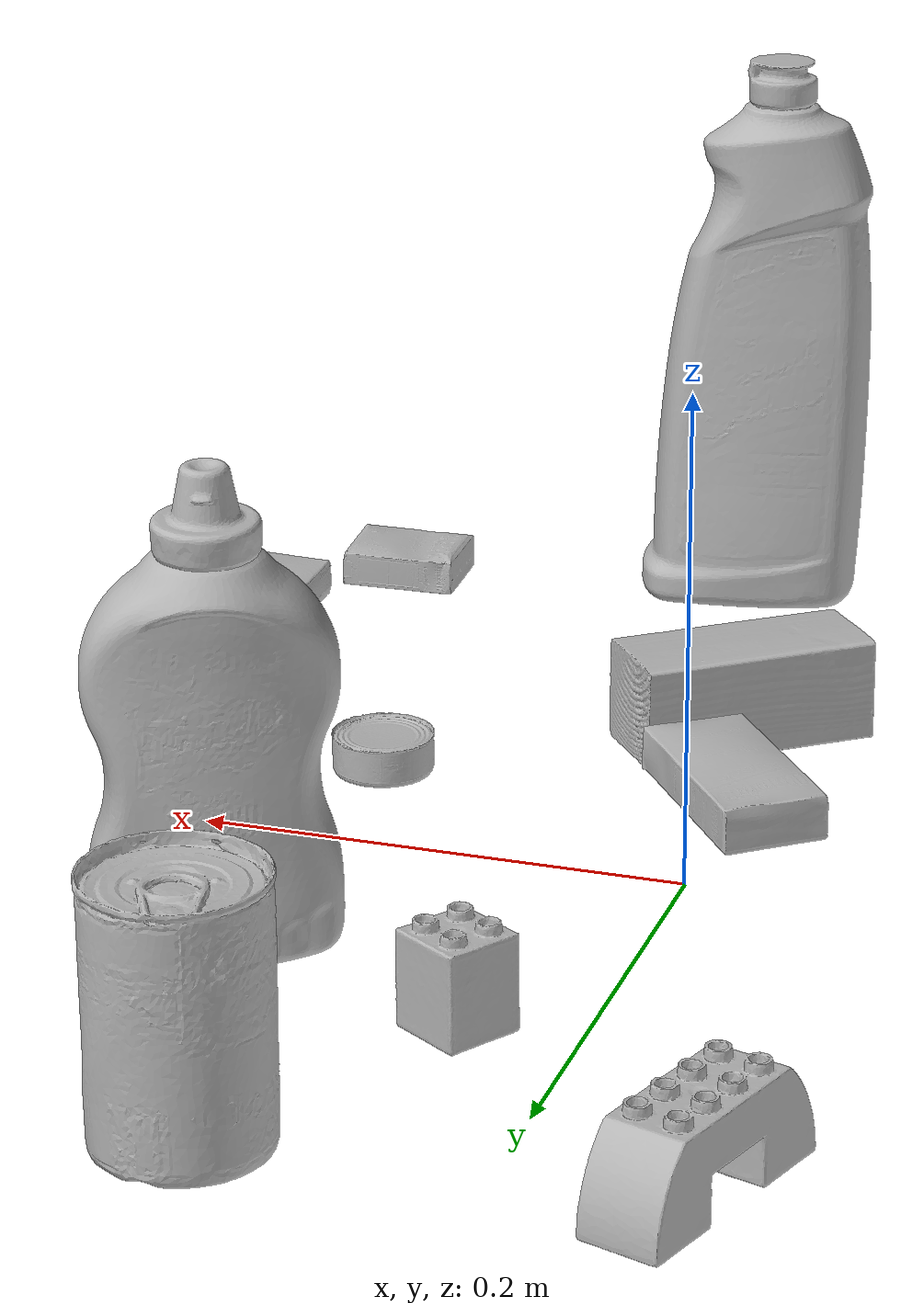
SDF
<sdf version="1.4">
  <world name="default">
    <light name="light1" type="point">
      <pose>0 0 1 0 0 0</pose>
      <diffuse>3 3 3 1</diffuse>
      <specular>3 3 3 1</specular>
    </light>
    <light name="light2" type="point">
      <pose>0 0.5 2 0 0 0</pose>
      <diffuse>1 1 1 1</diffuse>
      <specular>1 1 1 1</specular>
    </light>
    <light name="light3" type="point">
      <pose>0 0.5 2 0 0 0</pose>
      <diffuse>3 3 3 1</diffuse>
      <specular>3 3 3 1</specular>
    </light>
    <scene>
      <ambient>0.7 0.7 0.7</ambient>
    </scene>
    <model name="bottle1">
      <link name="link_bottle1">
        <collision name="default">
          <geometry>
            <mesh>
              <uri>model://bleach_cleanser/collision_meshes/collision.obj</uri>
              <scale>1.0 1.0 1.0</scale>
            </mesh>
          </geometry>
          <surface>
            <friction>
              <ode>
                <mu>0.5</mu>
                <mu2>0.5</mu2>
              </ode>
            </friction>
          <contact>
        <ode>
            <max_vel>0</max_vel>
            <min_depth>0.0001</min_depth>
            <kp>1e8</kp>
        </ode>
    </contact></surface>
        </collision>
        <visual name="default">
          <geometry>
            <mesh>
              <uri>model://bleach_cleanser/visual_meshes/visual.dae</uri>
              <scale>1.0 1.0 1.0</scale>
            </mesh>
          </geometry>
        </visual>
        <inertial>
          <mass>0.7954697608947754</mass>
          <pose>0.00012193184375064448 0.0037838825955986977 -0.02442161552608013 -0.0738167061583634 0.000420116841178447 -0.006875049257496471</pose>
          <inertia>
            <ixx>0.003871667</ixx>
            <iyy>0.0036078263</iyy>
            <izz>0.00066195446</izz>
            <ixy>0</ixy>
            <ixz>0</ixz>
            <iyz>0</iyz>
          </inertia>
        </inertial>
      </link>
      <pose>0.057611994445323944 -0.3278232216835022 0.12578414380550385 -0.00019984801691582776 1.6631648875017266e-05 1.748829966991964</pose>
    </model>
    <model name="bottle2">
      <link name="link_bottle2">
        <collision name="default">
          <geometry>
            <mesh>
              <uri>model://mustard_bottle/collision_meshes/collision.obj</uri>
              <scale>1.0 1.0 1.0</scale>
            </mesh>
          </geometry>
          <surface>
            <friction>
              <ode>
                <mu>0.5</mu>
                <mu2>0.5</mu2>
              </ode>
            </friction>
          <contact>
        <ode>
            <max_vel>0</max_vel>
            <min_depth>0.0001</min_depth>
            <kp>1e8</kp>
        </ode>
    </contact></surface>
        </collision>
        <visual name="default">
          <geometry>
            <mesh>
              <uri>model://mustard_bottle/visual_meshes/visual.dae</uri>
              <scale>1.0 1.0 1.0</scale>
            </mesh>
          </geometry>
        </visual>
        <inertial>
          <mass>0.5118113160133362</mass>
          <pose>0.0005032453336752951 -0.00015647397958673537 -0.017475785687565804 0.0004182313596805905 0.000946575919178121 0.024853765212265823</pose>
          <inertia>
            <ixx>0.00142123</ixx>
            <iyy>0.0012470091</iyy>
            <izz>0.0003745659</izz>
            <ixy>0</ixy>
            <ixz>0</ixz>
            <iyz>0</iyz>
          </inertia>
        </inertial>
      </link>
      <pose>0.15349063277244568 0.1039484515786171 0.09568725526332855 -0.0014970859506683917 0.02596446146514878 1.9528546595686944</pose>
    </model>
    <model name="toy1">
      <link name="link_toy1">
        <collision name="default">
          <geometry>
            <mesh>
              <uri>model://b_lego_duplo/collision_meshes/collision.obj</uri>
              <scale>1.0 1.0 1.0</scale>
            </mesh>
          </geometry>
          <surface>
            <friction>
              <ode>
                <mu>0.5</mu>
                <mu2>0.5</mu2>
              </ode>
            </friction>
          <contact>
        <ode>
            <max_vel>0</max_vel>
            <min_depth>0.0001</min_depth>
            <kp>1e8</kp>
        </ode>
    </contact></surface>
        </collision>
        <visual name="default">
          <geometry>
            <mesh>
              <uri>model://b_lego_duplo/visual_meshes/visual.dae</uri>
              <scale>1.0 1.0 1.0</scale>
            </mesh>
          </geometry>
        </visual>
        <inertial>
          <mass>0.04622781649231911</mass>
          <pose>-0.00011053043272113428 -9.152668098977301e-06 0.0019294294761493802 -0.037494565787594906 -0.026354503997733224 0.45188645636516256</pose>
          <inertia>
            <ixx>9.46087e-06</ixx>
            <iyy>9.524471e-06</iyy>
            <izz>8.429326e-06</izz>
            <ixy>0</ixy>
            <ixz>0</ixz>
            <iyz>0</iyz>
          </inertia>
        </inertial>
      </link>
      <pose>0.04496752843260765 0.1436719298362732 0.021814994513988495 -7.517864287521695e-07 -1.1940369959432415e-06 -2.1445810147789097</pose>
    </model>
    <model name="toy2">
      <link name="link_toy2">
        <collision name="default">
          <geometry>
            <mesh>
              <uri>model://e_lego_duplo/collision_meshes/collision.obj</uri>
              <scale>1.0 1.0 1.0</scale>
            </mesh>
          </geometry>
          <surface>
            <friction>
              <ode>
                <mu>0.5</mu>
                <mu2>0.5</mu2>
              </ode>
            </friction>
          <contact>
        <ode>
            <max_vel>0</max_vel>
            <min_depth>0.0001</min_depth>
            <kp>1e8</kp>
        </ode>
    </contact></surface>
        </collision>
        <visual name="default">
          <geometry>
            <mesh>
              <uri>model://e_lego_duplo/visual_meshes/visual.dae</uri>
              <scale>1.0 1.0 1.0</scale>
            </mesh>
          </geometry>
        </visual>
        <inertial>
          <mass>0.08809097856283188</mass>
          <pose>0.00032560486579313874 0.00023485404381062835 0.0019521467620506883 -0.022567425824888195 -6.82459351116558e-05 -0.007625145117383363</pose>
          <inertia>
            <ixx>1.836988e-05</ixx>
            <iyy>7.539474e-05</iyy>
            <izz>7.34193e-05</izz>
            <ixy>0</ixy>
            <ixz>0</ixz>
            <iyz>0</iyz>
          </inertia>
        </inertial>
      </link>
      <pose>-0.06885133683681488 0.23415564000606537 0.02180900052189827 8.407454530255912e-07 1.7934862672052256e-07 -1.8842783723026175</pose>
    </model>
    <model name="can1">
      <link name="link_can1">
        <collision name="default">
          <geometry>
            <mesh>
              <uri>model://tomato_soup_can/collision_meshes/collision.obj</uri>
              <scale>1.0 1.0 1.0</scale>
            </mesh>
          </geometry>
          <surface>
            <friction>
              <ode>
                <mu>0.5</mu>
                <mu2>0.5</mu2>
              </ode>
            </friction>
          <contact>
        <ode>
            <max_vel>0</max_vel>
            <min_depth>0.0001</min_depth>
            <kp>1e8</kp>
        </ode>
    </contact></surface>
        </collision>
        <visual name="default">
          <geometry>
            <mesh>
              <uri>model://tomato_soup_can/visual_meshes/visual.dae</uri>
              <scale>1.0 1.0 1.0</scale>
            </mesh>
          </geometry>
        </visual>
        <inertial>
          <mass>0.4347945749759674</mass>
          <pose>0.0001265227037947625 0.00010805525380419567 -0.0017973979702219367 0.007020064127759274 0.0004229940757469139 -0.009903323281130803</pose>
          <inertia>
            <ixx>0.00047671542</ixx>
            <iyy>0.00047396024</iyy>
            <izz>0.00024707714</izz>
            <ixy>0</ixy>
            <ixz>0</ixz>
            <iyz>0</iyz>
          </inertia>
        </inertial>
      </link>
      <pose>0.10671467334032059 0.25353482365608215 0.051273997873067856 -6.683045558931655e-07 -7.732510555361791e-07 -3.0875874237182788</pose>
    </model>
    <model name="can2">
      <link name="link_can2">
        <collision name="default">
          <geometry>
            <mesh>
              <uri>model://tuna_fish_can/collision_meshes/collision.obj</uri>
              <scale>0.5 0.5 0.5</scale>
            </mesh>
          </geometry>
          <surface>
            <friction>
              <ode>
                <mu>0.5</mu>
                <mu2>0.5</mu2>
              </ode>
            </friction>
          <contact>
        <ode>
            <max_vel>0</max_vel>
            <min_depth>0.0001</min_depth>
            <kp>1e8</kp>
        </ode>
    </contact></surface>
        </collision>
        <visual name="default">
          <geometry>
            <mesh>
              <uri>model://tuna_fish_can/visual_meshes/visual.dae</uri>
              <scale>0.5 0.5 0.5</scale>
            </mesh>
          </geometry>
        </visual>
        <inertial>
          <mass>0.02951119653880596</mass>
          <pose>-2.0361847418826073e-05 -7.256335720740026e-06 -0.0005269026733003557 -0.0017944763161136105 0.00017161533088142807 0.2405366956082085</pose>
          <inertia>
            <ixx>3.989958e-06</ixx>
            <iyy>3.9733272e-06</iyy>
            <izz>6.827389e-06</izz>
            <ixy>0</ixy>
            <ixz>0</ixz>
            <iyz>0</iyz>
          </inertia>
        </inertial>
      </link>
      <pose>0.14963200688362122 -0.07168737798929214 0.00851999968290329 -5.301413781924613e-09 -1.4402390002778333e-10 -2.0077318920239335</pose>
    </model>
    <model name="box1">
      <link name="link_box1">
        <collision name="default">
          <geometry>
            <mesh>
              <uri>model://sugar_box/collision_meshes/collision.obj</uri>
              <scale>0.5 0.5 0.5</scale>
            </mesh>
          </geometry>
          <surface>
            <friction>
              <ode>
                <mu>0.5</mu>
                <mu2>0.5</mu2>
              </ode>
            </friction>
          <contact>
        <ode>
            <max_vel>0</max_vel>
            <min_depth>0.0001</min_depth>
            <kp>1e8</kp>
        </ode>
    </contact></surface>
        </collision>
        <visual name="default">
          <geometry>
            <mesh>
              <uri>model://sugar_box/visual_meshes/visual.dae</uri>
              <scale>0.5 0.5 0.5</scale>
            </mesh>
          </geometry>
        </visual>
        <inertial>
          <mass>0.10932230949401855</mass>
          <pose>0.0005171863595023751 1.924554817378521e-05 -0.00018182402709499002 -0.00040462630024242077 0.0010506636385781449 0.0026153787888990553</pose>
          <inertia>
            <ixx>2.277176e-05</ixx>
            <iyy>7.3603005e-05</iyy>
            <izz>8.811158e-05</izz>
            <ixy>0</ixy>
            <ixz>0</ixz>
            <iyz>0</iyz>
          </inertia>
        </inertial>
      </link>
      <pose>0.0010598155204206705 -0.07738754898309708 0.011399301700294018 0.0007755651407901122 -0.02343308730563773 -0.9141686746713955</pose>
    </model>
    <model name="box2">
      <link name="link_box2">
        <collision name="default">
          <geometry>
            <mesh>
              <uri>model://pudding_box/collision_meshes/collision.obj</uri>
              <scale>0.5 0.5 0.5</scale>
            </mesh>
          </geometry>
          <surface>
            <friction>
              <ode>
                <mu>0.5</mu>
                <mu2>0.5</mu2>
              </ode>
            </friction>
          <contact>
        <ode>
            <max_vel>0</max_vel>
            <min_depth>0.0001</min_depth>
            <kp>1e8</kp>
        </ode>
    </contact></surface>
        </collision>
        <visual name="default">
          <geometry>
            <mesh>
              <uri>model://pudding_box/visual_meshes/visual.dae</uri>
              <scale>0.5 0.5 0.5</scale>
            </mesh>
          </geometry>
        </visual>
        <inertial>
          <mass>0.061322033405303955</mass>
          <pose>0.00024474109522998333 0.00040339428232982755 -0.0002594413817860186 0.0052131013423229325 -0.006603797777692156 0.020079823300565562</pose>
          <inertia>
            <ixx>1.733035e-05</ixx>
            <iyy>1.1659984e-05</iyy>
            <izz>2.559279e-05</izz>
            <ixy>0</ixy>
            <ixz>0</ixz>
            <iyz>0</iyz>
          </inertia>
        </inertial>
      </link>
      <pose>0.2681184709072113 -0.2341187447309494 0.009862901642918587 0.02234849977680934 -0.011391739101477784 -1.5709316934962478</pose>
    </model>
    <model name="box3">
      <link name="link_box3">
        <collision name="default">
          <geometry>
            <mesh>
              <uri>model://cracker_box/collision_meshes/collision.obj</uri>
              <scale>0.25 0.25 0.25</scale>
            </mesh>
          </geometry>
          <surface>
            <friction>
              <ode>
                <mu>0.5</mu>
                <mu2>0.5</mu2>
              </ode>
            </friction>
          <contact>
        <ode>
            <max_vel>0</max_vel>
            <min_depth>0.0001</min_depth>
            <kp>1e8</kp>
        </ode>
    </contact></surface>
        </collision>
        <visual name="default">
          <geometry>
            <mesh>
              <uri>model://cracker_box/visual_meshes/visual.dae</uri>
              <scale>0.25 0.25 0.25</scale>
            </mesh>
          </geometry>
        </visual>
        <inertial>
          <mass>0.05027599632740021</mass>
          <pose>0.00023660380975343287 6.358561222441494e-05 -0.00042573834070935845 -0.0003162076618733006 -0.011106490531610344 0.00254679570085012</pose>
          <inertia>
            <ixx>7.992481e-06</ixx>
            <iyy>1.3197154e-05</iyy>
            <izz>1.8833553e-05</izz>
            <ixy>0</ixy>
            <ixz>0</ixz>
            <iyz>0</iyz>
          </inertia>
        </inertial>
      </link>
      <pose>0.21524854004383087 -0.2926659882068634 0.009096029214560986 -0.014050651699250316 -0.005016562194367719 0.05731853624224887</pose>
    </model>
    <model name="box4">
      <link name="link_box4">
        <collision name="default">
          <geometry>
            <mesh>
              <uri>model://wood_block/collision_meshes/collision.obj</uri>
              <scale>0.5 0.5 0.5</scale>
            </mesh>
          </geometry>
          <surface>
            <friction>
              <ode>
                <mu>0.5</mu>
                <mu2>0.5</mu2>
              </ode>
            </friction>
          <contact>
        <ode>
            <max_vel>0</max_vel>
            <min_depth>0.0001</min_depth>
            <kp>1e8</kp>
        </ode>
    </contact></surface>
        </collision>
        <visual name="default">
          <geometry>
            <mesh>
              <uri>model://wood_block/visual_meshes/visual.dae</uri>
              <scale>0.5 0.5 0.5</scale>
            </mesh>
          </geometry>
        </visual>
        <inertial>
          <mass>0.30035653710365295</mass>
          <pose>-2.9066577553749084e-06 -0.000285404734313488 0.00013204291462898254 -0.05221128362191582 -0.005192695718477931 -0.0068613783725326285</pose>
          <inertia>
            <ixx>0.00010048062</ixx>
            <iyy>0.00031741828</iyy>
            <izz>0.00031623102</izz>
            <ixy>0</ixy>
            <ixz>0</ixz>
            <iyz>0</iyz>
          </inertia>
        </inertial>
      </link>
      <pose>0.016692625358700752 -0.14972451329231262 0.022629255428910255 -0.005208405536950418 0.005718715464065991 0.6686992066682522</pose>
    </model>
  <physics type="ode">
      <max_contacts>50</max_contacts>
      <ode>
        <solver>
          <type>quick</type>
          <iters>75</iters>
        </solver>
        <constraints>
          <contact_max_correcting_vel>0</contact_max_correcting_vel>
          <contact_surface_layer>0</contact_surface_layer>
        </constraints>
      </ode>
    </physics></world>
</sdf>
